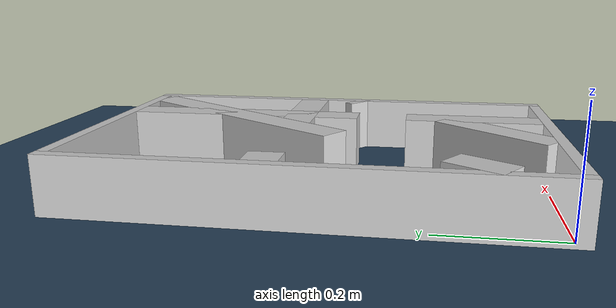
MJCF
<?xml version="1.0" ?>
<mujoco model="generated_real_template">
  <compiler angle="degree"/>
  <option timestep="0.002" integrator="implicitfast" iterations="100" cone="elliptic"/>
  <default>
    <geom density="1"/>
  </default>
  <asset>
    <texture builtin="gradient" height="3072" rgb1="0.3 0.5 0.7" rgb2="0 0 0" type="skybox" width="512"/>
    <texture builtin="checker" height="300" mark="edge" markrgb="0.8 0.8 0.8" name="groundplane" rgb1="0.2 0.3 0.4" rgb2="0.1 0.2 0.3" type="2d" width="300"/>
    <material name="groundplane" reflectance="0.2" texrepeat="5 5" texture="groundplane" texuniform="true"/>
  </asset>
  <worldbody>
    <light dir="0 0 -1" directional="true" pos="0 0 1.5"/>
    <geom name="floor" type="plane" condim="4" friction="0.5 0.005 0.001" material="groundplane" size="0 0 0.05"/>
    <body name="walls">
      <geom name="wall_boundary_left" type="box" condim="4" friction="1.0 0.005 0.0001" rgba="0.8 0.8 0.8 1" pos="-0.010000 0.387500 0.050000" euler="0 0 0.000000" size="0.010000 0.407500 0.050000"/>
      <geom name="wall_boundary_right" type="box" condim="4" friction="1.0 0.005 0.0001" rgba="0.8 0.8 0.8 1" pos="0.500000 0.387500 0.050000" euler="0 0 0.000000" size="0.010000 0.407500 0.050000"/>
      <geom name="wall_boundary_bottom" type="box" condim="4" friction="1.0 0.005 0.0001" rgba="0.8 0.8 0.8 1" pos="0.245000 -0.010000 0.050000" euler="0 0 0.000000" size="0.245000 0.010000 0.050000"/>
      <geom name="wall_boundary_top" type="box" condim="4" friction="1.0 0.005 0.0001" rgba="0.8 0.8 0.8 1" pos="0.245000 0.785000 0.050000" euler="0 0 0.000000" size="0.245000 0.010000 0.050000"/>
      <geom name="wall_inner_1_1" type="box" condim="4" friction="1.0 0.005 0.0001" rgba="0.8 0.8 0.8 1" pos="0.322231 0.567986 0.050000" euler="0 0 -123.569604" size="0.248452 0.028500 0.050000"/>
      <geom name="wall_inner_1_2" type="box" condim="4" friction="1.0 0.005 0.0001" rgba="0.8 0.8 0.8 1" pos="0.031471 0.129852 0.050000" euler="0 0 -123.569604" size="0.050136 0.028500 0.050000"/>
      <geom name="wall_inner_2_1" type="box" condim="4" friction="1.0 0.005 0.0001" rgba="0.8 0.8 0.8 1" pos="0.482457 0.351958 0.050000" euler="0 0 -131.096940" size="0.009225 0.028500 0.050000"/>
      <geom name="wall_inner_2_2" type="box" condim="4" friction="1.0 0.005 0.0001" rgba="0.8 0.8 0.8 1" pos="0.251655 0.087356 0.050000" euler="0 0 -131.096940" size="0.115918 0.028500 0.050000"/>
      <geom name="wall_inner_3_1" type="box" condim="4" friction="1.0 0.005 0.0001" rgba="0.8 0.8 0.8 1" pos="0.024642 0.446050 0.050000" euler="0 0 0.000000" size="0.024642 0.028500 0.050000"/>
      <geom name="wall_inner_3_2" type="box" condim="4" friction="1.0 0.005 0.0001" rgba="0.8 0.8 0.8 1" pos="0.373405 0.446050 0.050000" euler="0 0 0.000000" size="0.116595 0.028500 0.050000"/>
      <geom name="wall_inner_4_1" type="box" condim="4" friction="1.0 0.005 0.0001" rgba="0.8 0.8 0.8 1" pos="0.336946 0.122964 0.050000" euler="0 0 90.000000" size="0.122964 0.028500 0.050000"/>
      <geom name="wall_inner_4_2" type="box" condim="4" friction="1.0 0.005 0.0001" rgba="0.8 0.8 0.8 1" pos="0.336946 0.556096 0.050000" euler="0 0 90.000000" size="0.218904 0.028500 0.050000"/>
    </body>
  </worldbody>
</mujoco>
